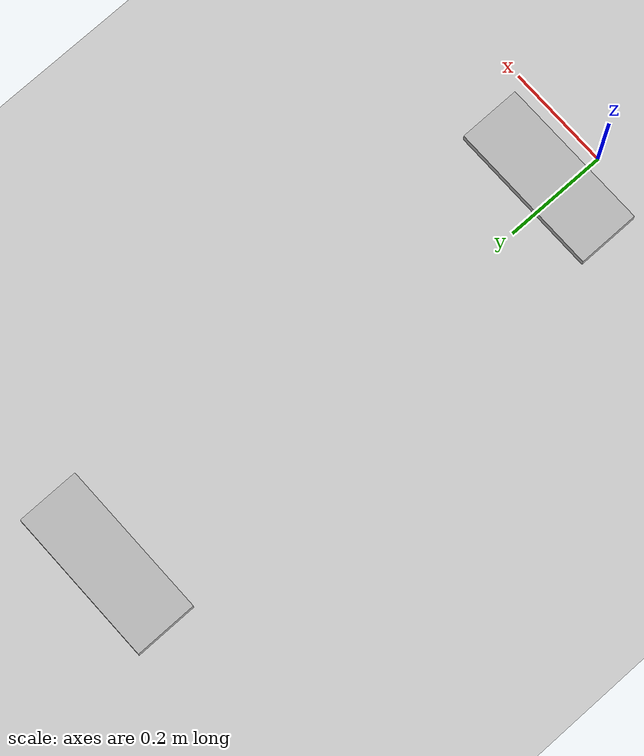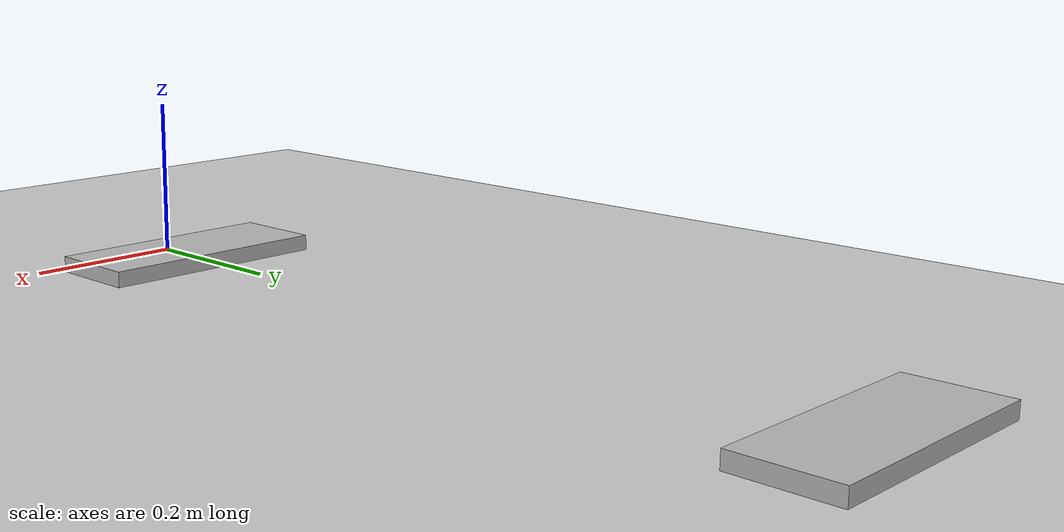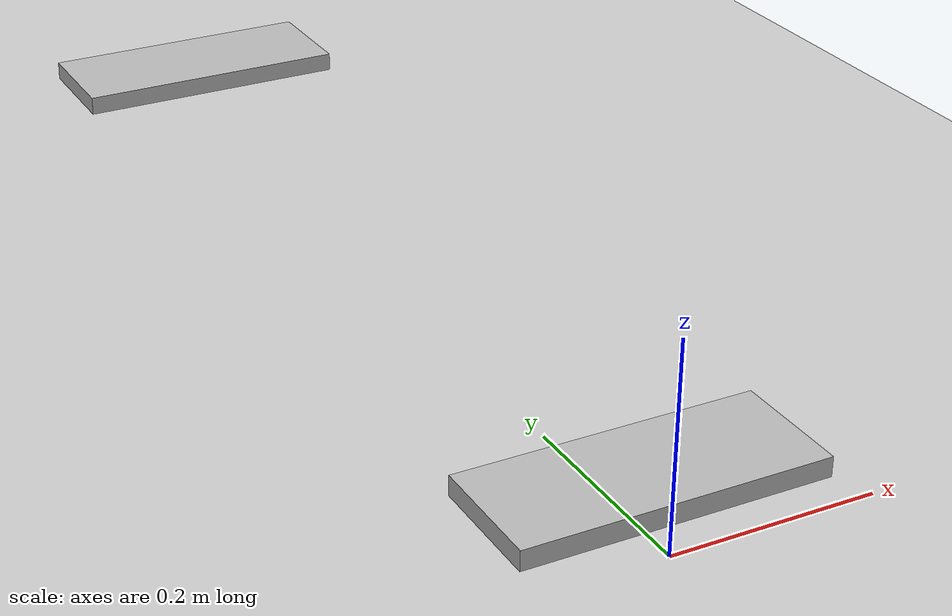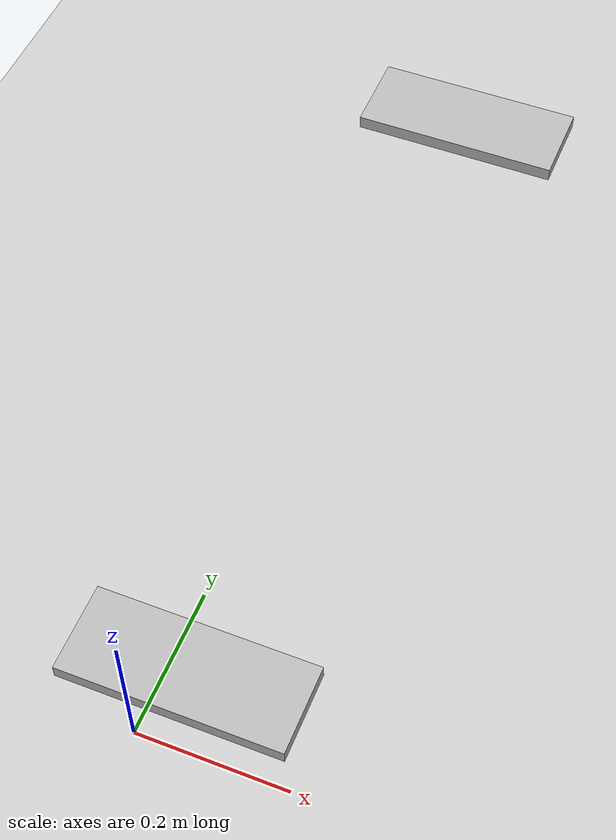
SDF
<?xml version="1.0" ?>
<sdf version="1.3">
  <world name="default">

    <physics type="ode">
      <gravity>0.1 0 -9.81</gravity>
    </physics>

    <!-- A global light source -->
    <include>
      <uri>model://sun</uri>
    </include>

    <!-- A ground plane -->
    <include>
      <uri>model://ground_plane</uri>
    </include>

    <model name="right_foot">
      <pose>0 1 .005 0 0 0</pose>
      <link name="right_foot">
        <pose>.030 .090 .010 0 0 0</pose>
        <inertial>
          <mass>1.5</mass>
          <inertia>
            <ixx>1.0</ixx><ixy>0.0</ixy><ixz>0.0</ixz><iyy>1.0</iyy><iyz>0.0</iyz><izz>1.0</izz>
          </inertia>
        </inertial>
        <collision name="collision">
          <geometry>
            <box><size>.300 .120 .020</size></box>
          </geometry>
          <surface>
            <friction>
              <ode><mu>100000.0</mu><mu2>100000.0</mu2></ode>
            </friction>
          </surface>
        </collision>
        <visual name="visual">
          <geometry>
            <box><size>.300 .120 .020</size></box>
          </geometry>
        </visual>
      </link>
    </model>
    <model name="left_foot">
      <pose>0 0 .005 0 0 0</pose>
      <link name="left_foot">
        <pose>.030 .090 .010 0 0 0</pose>
        <inertial>
          <mass>1.5</mass>
          <inertia>
            <ixx>1.0</ixx><ixy>0.0</ixy><ixz>0.0</ixz><iyy>1.0</iyy><iyz>0.0</iyz><izz>1.0</izz>
          </inertia>
        </inertial>
        <collision name="collision">
          <geometry>
            <box><size>.300 .120 .020</size></box>
          </geometry>
          <surface>
            <friction>
              <ode><mu>0.0</mu><mu2>0.0</mu2></ode>
            </friction>
          </surface>
        </collision>
        <visual name="visual">
          <geometry>
            <box><size>.300 .120 .020</size></box>
          </geometry>
        </visual>
      </link>
    </model>
  </world>
</sdf>
